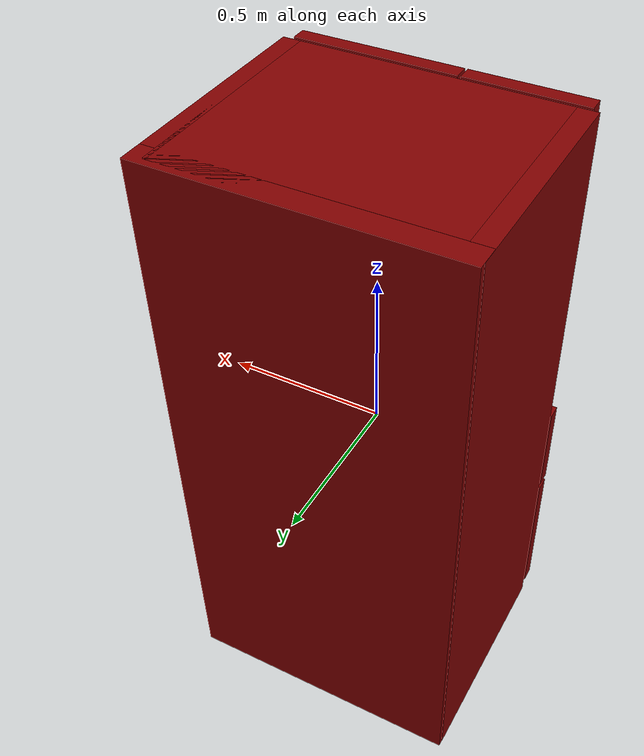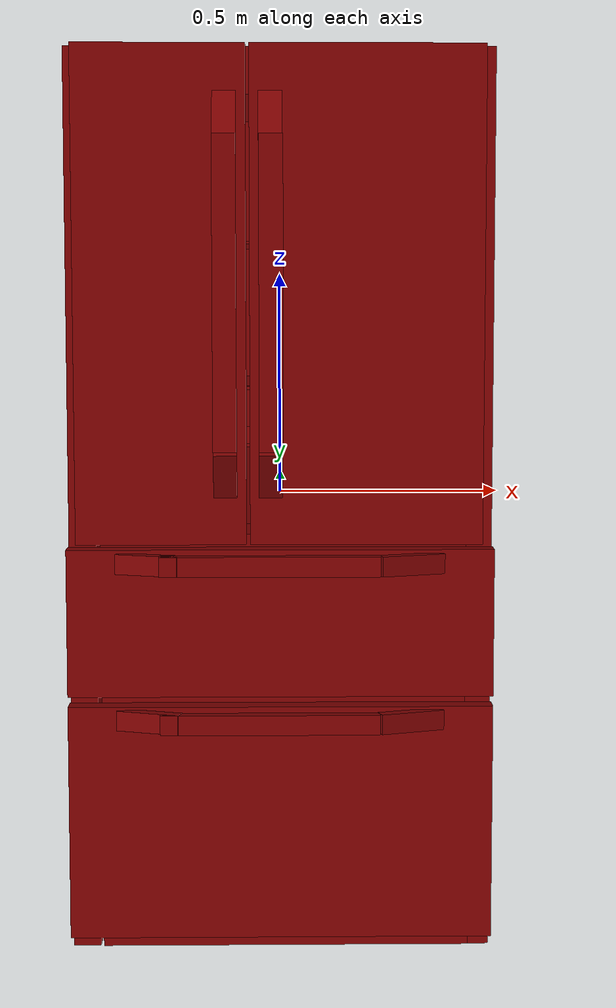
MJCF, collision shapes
<?xml version='1.0' encoding='UTF-8'?>
<mujoco model="model">
  <option timestep="0.002" gravity="0.0 0.0 -9.81"/>
  <compiler angle="radian"/>
  <asset>
    <mesh file="visuals/freezer0.obj" name="freezer0_vis"/>
    <mesh file="visuals/freezer1.obj" name="freezer1_vis"/>
    <mesh file="visuals/fridge_drawer0.obj" name="fridge_drawer0_vis"/>
    <mesh file="visuals/fridge_left_Clear.obj" name="fridge_left_Clear_vis"/>
    <mesh file="visuals/fridge_left_door.obj" name="fridge_left_door_vis"/>
    <mesh file="visuals/fridge_right_Clear.obj" name="fridge_right_Clear_vis"/>
    <mesh file="visuals/fridge_right_door.obj" name="fridge_right_door_vis"/>
    <mesh file="visuals/Body001.obj" name="Body001_vis"/>
    <mesh file="visuals/Body001_Clear.obj" name="Body001_Clear_vis"/>
    <texture file="visuals/T_BC001.png" name="Body001_material" type="2d"/>
    <material name="Body001_material" rgba="1 1 1 1.0" texture="Body001_material" shininess="0.1" specular="5"/>
    <texture file="visuals/T_BC001.png" name="freezer0_material" type="2d"/>
    <material name="freezer0_material" rgba="1 1 1 1.0" texture="freezer0_material" shininess="0.1" specular="5"/>
    <texture file="visuals/T_BC001.png" name="freezer1_material" type="2d"/>
    <material name="freezer1_material" rgba="1 1 1 1.0" texture="freezer1_material" shininess="0.1" specular="5"/>
    <texture file="visuals/T_BC001.png" name="fridge_drawer0_material" type="2d"/>
    <material name="fridge_drawer0_material" rgba="1 1 1 1.0" texture="fridge_drawer0_material" shininess="0.1" specular="5"/>
    <texture file="visuals/T_BC001.png" name="fridge_left_door_material" type="2d"/>
    <material name="fridge_left_door_material" rgba="1 1 1 1.0" texture="fridge_left_door_material" shininess="0.1" specular="5"/>
    <material name="fridge_left_Clear_material" rgba="0.7173659801483154 0.7173659801483154 0.7173659801483154 0.699999988079071" shininess="0.141421377658844" specular="0.3103448502657381"/>
    <texture file="visuals/T_BC001.png" name="fridge_right_door_material" type="2d"/>
    <material name="fridge_right_door_material" rgba="1 1 1 1.0" texture="fridge_right_door_material" shininess="0.1" specular="5"/>
    <material name="fridge_right_Clear_material" rgba="0.7173659801483154 0.7173659801483154 0.7173659801483154 0.699999988079071" shininess="0.141421377658844" specular="0.3103448502657381"/>
    <material name="Body001_Clear_material" rgba="0.7173659801483154 0.7173659801483154 0.7173659801483154 0.699999988079071" shininess="0.141421377658844" specular="0.3103448502657381"/>
  </asset>
  <default>
    <default class="visual">
      <geom conaffinity="0" contype="0" group="1" type="mesh"/>
    </default>
    <default class="collision">
      <geom group="0" rgba="0.5 0 0 0.5"/>
    </default>
    <default class="spawn">
      <geom group="0" rgba="1 1 1 0.5" contype="0" conaffinity="0"/>
      <site group="0" rgba="1 1 1 0.5"/>
    </default>
    <default class="region">
      <geom group="1" conaffinity="0" contype="0" rgba="0 1 0 0"/>
    </default>
  </default>
  <worldbody>
    <body>
      <body name="object">
        <geom mesh="Body001_vis" type="mesh" solimp="0.998 0.998 0.001" solref="0.001 1" friction="0.95 0.3 0.1" class="visual" material="Body001_material"/>
        <geom class="collision" type="box" pos="-0.42622808 0.04285824 0.00000000" size="0.029605332762002945 0.3534112274646759 0.9728236794471741" quat="1.0 0.0 0.0 0.0"/>
        <geom class="collision" type="box" pos="0.42867466 0.04123300 -0.00000000" size="0.027389300987124443 0.3517859876155853 0.9728236794471741" quat="1.0 0.0 0.0 0.0"/>
        <geom class="collision" type="box" pos="0.00137756 0.04123300 0.92308980" size="0.41047734022140503 0.3517859876155853 0.04973379895091057" quat="1.0 0.0 0.0 0.0"/>
        <geom class="collision" type="box" pos="0.01116431 0.03959446 -0.90085447" size="0.40069055557250977 0.3534245193004608 0.071969173848629" quat="1.0 0.0 0.0 0.0"/>
        <geom class="collision" type="box" pos="0.00051094 0.37794326 0.00000000" size="0.4555530548095703 0.037149157375097275 0.9728236794471741" quat="1.0 0.0 0.0 0.0"/>
        <geom class="collision" type="box" pos="0.01116431 0.04435379 -0.08724128" size="0.40069055557250977 0.34866517782211304 0.026909757405519485" quat="1.0 0.0 0.0 0.0"/>
        <geom class="collision" type="box" pos="0.01116431 0.04435379 -0.42248935" size="0.40069055557250977 0.34866517782211304 0.03191669285297394" quat="1.0 0.0 0.0 0.0"/>
        <geom class="collision" type="box" pos="0.00160570 0.09651739 0.24893118" size="0.39985665678977966 0.2622455656528473 0.0026953681372106075" quat="1.0 0.0 0.0 0.0"/>
        <geom class="collision" type="box" pos="0.00160124 0.09651739 0.56729835" size="0.40373584628105164 0.2622455656528473 0.002695267554372549" quat="1.0 0.0 0.0 0.0"/>
        <geom class="collision" type="box" pos="0.01116431 -0.16997062 0.24859875" size="0.40069055557250977 0.007287968415766954 0.003665081923827529" quat="1.0 0.0 0.0 0.0"/>
        <geom class="collision" type="box" pos="0.01116431 -0.16997062 0.56729937" size="0.40069055557250977 0.007287968415766954 0.002968861721456051" quat="1.0 0.0 0.0 0.0"/>
        <body name="freezer0">
          <geom class="region" name="reg_freezer0" type="box" pos="-0.0017283800000000016 -0.121335195 -0.64552891" size="0.33003923 0.152072235 0.14048088999999997"/>
          <joint axis="0.0 -1.0 0.0" pos="0.00011580 -0.13331749 -0.67677826" limited="true" name="freezer0_door_joint" range="0.0 0.4" type="slide" damping="1" frictionloss="1" armature=".01" stiffness="0.05"/>
          <geom mesh="freezer0_vis" type="mesh" solimp="0.998 0.998 0.001" solref="0.001 1" friction="0.95 0.3 0.1" class="visual" material="freezer0_material"/>
          <geom class="collision" type="box" pos="-0.00789430 0.09419683 -0.65920329" size="0.3464532792568207 0.012335081584751606 0.1701451539993286" quat="0.9852511882781982 -0.17111438512802124 -1.6719975429462985e-17 -2.6411181610115746e-19"/>
          <geom class="collision" type="box" pos="-0.35075328 -0.08023247 -0.65726238" size="0.014440087601542473 0.19891704618930817 0.15775400400161743" quat="1.0 0.0 0.0 0.0"/>
          <geom class="collision" type="box" pos="0.34675571 -0.08023246 -0.65738887" size="0.014201557263731956 0.19892151653766632 0.15762756764888763" quat="1.0 0.0 0.0 0.0"/>
          <geom class="collision" type="box" pos="0.00082622 -0.12263945 -0.80584735" size="0.3538326621055603 0.15651457011699677 0.01437593437731266" quat="1.0 0.0 0.0 0.0"/>
          <geom class="collision" type="box" pos="0.00011528 -0.34862573 -0.67960572" size="0.45594871044158936 0.02427990362048149 0.2544715106487274" quat="1.0 0.0 0.0 0.0" name="freezer0_door_main"/>
          <geom class="collision" type="box" pos="-0.02168056 -0.41237743 -0.45322755" size="0.2335955798625946 0.013415376655757427 0.02128618024289608" quat="1.0 0.0 0.0 0.0" name="freezer0_door_handle_main"/>
          <geom class="collision" type="box" pos="-0.27999414 -0.39033712 -0.45261282" size="0.07090720534324646 0.013639247044920921 0.02128618024289608" quat="3.0971946785030013e-07 0.9866302013397217 -0.16297516226768494 -5.1160586878040704e-08" name="freezer0_door_handle_1"/>
          <geom class="collision" type="box" pos="0.27838733 -0.39033712 -0.45261285" size="0.07090720534324646 0.013639247044920921 0.02128618024289608" quat="0.9866302013397217 0.0 0.0 0.16297516226768494" name="freezer0_door_handle_2"/>
        </body>
        <body name="freezer1">
          <geom class="region" name="reg_freezer1" type="box" pos="-0.0017283800000000016 -0.02500118500000001 -0.258839065" size="0.33003923 0.247400625 0.09415449499999999"/>
          <joint axis="0.0 -1.0 0.0" pos="0.00011578 -0.08087891 -0.24765161" limited="true" name="freezer1_door_joint" range="0.0 0.4" type="slide" damping="1" frictionloss="1" armature=".01" stiffness="0.05"/>
          <geom mesh="freezer1_vis" type="mesh" solimp="0.998 0.998 0.001" solref="0.001 1" friction="0.95 0.3 0.1" class="visual" material="freezer1_material"/>
          <geom class="collision" type="box" pos="-0.00789430 0.24395667 -0.27274412" size="0.3464532792568207 0.01158692967146635 0.11446794122457504" quat="0.9995784759521484 -0.029031701385974884 -1.2537097606891572e-17 3.4457265656116787e-19"/>
          <geom class="collision" type="box" pos="-0.35146878 -0.01221650 -0.27273270" size="0.014970029704272747 0.26539409160614014 0.11438349634408951" quat="1.0 0.0 0.0 0.0"/>
          <geom class="collision" type="box" pos="0.34642472 -0.01221650 -0.27274254" size="0.014450441114604473 0.26540884375572205 0.1138586774468422" quat="1.0 0.0 0.0 0.0"/>
          <geom class="collision" type="box" pos="0.00082622 -0.01798618 -0.37294281" size="0.3538326621055603 0.2596391439437866 0.01507387962192297" quat="1.0 0.0 0.0 0.0"/>
          <geom class="collision" type="box" pos="0.00011528 -0.34862573 -0.24399549" size="0.45594871044158936 0.02427990362048149 0.15896204113960266" quat="1.0 0.0 0.0 0.0" name="freezer1_door_main"/>
          <geom class="collision" type="box" pos="-0.02168059 -0.41237743 -0.11448485" size="0.23359550535678864 0.013415376655757427 0.02128618024289608" quat="1.0 0.0 0.0 0.0" name="freezer1_door_handle_main"/>
          <geom class="collision" type="box" pos="0.27838733 -0.39033712 -0.11448485" size="0.07090720534324646 0.013639247044920921 0.02128618024289608" quat="0.9866302013397217 0.0 0.0 0.16297516226768494" name="freezer1_door_handle_2"/>
          <geom class="collision" type="box" pos="-0.27999414 -0.39033715 -0.11448485" size="0.07090721279382706 0.013639247044920921 0.02128618024289608" quat="3.0971946785030013e-07 0.9866302013397217 -0.16297516226768494 -5.1160586878040704e-08" name="freezer1_door_handle_1"/>
        </body>
        <body name="fridge_drawer0">
          <geom class="region" name="reg_fridge_drawer0" type="box" pos="0.0019757850000000077 0.06851884000000001 0.037885635" size="0.342209335 0.20763526 0.080212655"/>
          <joint axis="0.0 -1.0 0.0" pos="0.00268758 0.05375673 0.01434943" limited="true" name="fridge_drawer0_joint" range="0.0 0.45" type="slide" damping="1" frictionloss="1" armature=".01" stiffness="0.05"/>
          <geom mesh="fridge_drawer0_vis" type="mesh" solimp="0.998 0.998 0.001" solref="0.001 1" friction="0.95 0.3 0.1" class="visual" material="fridge_drawer0_material"/>
          <geom class="collision" type="box" pos="0.00297103 0.06179669 -0.04987789" size="0.3549322187900543 0.21900534629821777 0.00650826608762145" quat="1.0 0.0 0.0 0.0"/>
          <geom class="collision" type="box" pos="0.00297102 0.30045371 0.03513788" size="0.35493215918540955 0.010893763974308968 0.09288446605205536" quat="0.9980632662773132 -0.06220714747905731 1.3812760658319826e-17 -2.86053822665894e-24"/>
          <geom class="collision" type="box" pos="0.00904244 -0.17644441 0.03600744" size="0.361003577709198 0.011427411809563637 0.09140660613775253" quat="0.990718424320221 0.13593022525310516 -3.658348534081124e-17 -1.5539371560439019e-18"/>
          <geom class="collision" type="box" pos="0.36125731 0.06853633 0.03469197" size="0.00970794353634119 0.23029488325119019 0.09105224907398224" quat="1.0 0.0 0.0 0.0"/>
          <geom class="collision" type="box" pos="-0.35554860 0.06478623 0.03417211" size="0.01100264210253954 0.23404495418071747 0.09176009148359299" quat="1.0 0.0 0.0 0.0"/>
        </body>
        <body name="fridge_left_door">
          <joint axis="0.0 0.0 -1.0" pos="-0.43033550 -0.35035236 0.44032699" limited="true" name="fridge_left_door_joint" range="0.0 1.5707963267948966" type="hinge" damping="1" frictionloss="1" armature=".01" stiffness="0.05"/>
          <geom mesh="fridge_left_door_vis" type="mesh" solimp="0.998 0.998 0.001" solref="0.001 1" friction="0.95 0.3 0.1" class="visual" material="fridge_left_door_material"/>
          <geom class="collision" type="box" pos="-0.25371227 -0.34789954 0.44926906" size="0.18143905699253082 0.023472217842936516 0.5234464406967163" quat="1.0 0.0 0.0 0.0" name="fridge_left_door_main"/>
          <geom class="collision" type="box" pos="-0.11612616 -0.41859980 0.45554173" size="0.02461545541882515 0.01387966051697731 0.3281340003013611" quat="1.0 0.0 0.0 0.0" name="fridge_left_door_handle_main"/>
          <geom class="collision" type="box" pos="-0.11612618 -0.38840263 0.82348615" size="0.02462036907672882 0.01352567970752716 0.049802325665950775" quat="0.9809927344322205 -0.19404448568820953 4.308653777996428e-17 -5.087527271977686e-24" name="fridge_left_door_handle_1"/>
          <geom class="collision" type="box" pos="-0.11612616 -0.39106475 0.07842322" size="0.024620363488793373 0.013525689952075481 0.04980230703949928" quat="3.0794979011261603e-07 -6.091376292260975e-08 -0.19404451549053192 0.9809927344322205" name="fridge_left_door_handle_2"/>
          <body name="fridge_left_Clear">
            <geom mesh="fridge_left_Clear_vis" type="mesh" solimp="0.998 0.998 0.001" solref="0.001 1" friction="0.95 0.3 0.1" class="visual" material="fridge_left_Clear_material"/>
            <geom class="collision" type="box" pos="-0.26133928 -0.28615175 0.64779675" size="0.11234426498413086 0.0492464080452919 0.003341684117913246" quat="1.0 0.0 0.0 0.0"/>
            <geom class="collision" type="box" pos="-0.15971474 -0.28038208 0.67442155" size="0.006390671711415052 0.05501607805490494 0.024759508669376373" quat="1.0 0.0 0.0 0.0"/>
            <geom class="collision" type="box" pos="-0.36694572 -0.28038208 0.67442155" size="0.004815603140741587 0.05501104146242142 0.024759508669376373" quat="1.0 0.0 0.0 0.0"/>
            <geom class="collision" type="box" pos="-0.27005980 -0.22746070 0.67442155" size="0.10496816039085388 0.00403837114572525 0.024759508669376373" quat="1.0 0.0 0.0 0.0"/>
            <geom class="collision" type="box" pos="-0.27005980 -0.22746070 0.49715516" size="0.10496816039085388 0.00403837114572525 0.024759508669376373" quat="1.0 0.0 0.0 0.0"/>
            <geom class="collision" type="box" pos="-0.36694572 -0.28038208 0.49715516" size="0.004815603140741587 0.05501147359609604 0.024759508669376373" quat="1.0 0.0 0.0 0.0"/>
            <geom class="collision" type="box" pos="-0.15971474 -0.28038208 0.49715516" size="0.006390688940882683 0.05501607805490494 0.024759508669376373" quat="1.0 0.0 0.0 0.0"/>
            <geom class="collision" type="box" pos="-0.26133928 -0.28615175 0.47053036" size="0.11234426498413086 0.0492464080452919 0.003341684117913246" quat="1.0 0.0 0.0 0.0"/>
            <geom class="collision" type="box" pos="-0.26133928 -0.28615175 0.15273464" size="0.11234426498413086 0.0492464080452919 0.0033416731748729944" quat="1.0 0.0 0.0 0.0"/>
            <geom class="collision" type="box" pos="-0.15971474 -0.28038208 0.20339920" size="0.006390688940882683 0.05501607805490494 0.048799291253089905" quat="1.0 0.0 0.0 0.0"/>
            <geom class="collision" type="box" pos="-0.36694572 -0.28038208 0.20339920" size="0.004815603140741587 0.05501220375299454 0.048799291253089905" quat="1.0 0.0 0.0 0.0"/>
            <geom class="collision" type="box" pos="-0.27005980 -0.22746070 0.20339920" size="0.10496823489665985 0.00403837114572525 0.048799291253089905" quat="1.0 0.0 0.0 0.0"/>
          </body>
        </body>
        <body name="fridge_right_door">
          <joint axis="0.0 0.0 1.0" pos="0.42562472 -0.34662078 0.44032699" limited="true" name="fridge_right_door_joint" range="0.0 1.5707963267948966" type="hinge" damping="1" frictionloss="1" armature=".01" stiffness="0.05"/>
          <geom mesh="fridge_right_door_vis" type="mesh" solimp="0.998 0.998 0.001" solref="0.001 1" friction="0.95 0.3 0.1" class="visual" material="fridge_right_door_material"/>
          <geom class="collision" type="box" pos="-0.01877056 -0.41958176 0.45554170" size="0.02517479471862316 0.014861676841974258 0.32813549041748047" quat="1.0 0.0 0.0 0.0" name="fridge_right_door_handle_main"/>
          <geom class="collision" type="box" pos="0.18320087 -0.34789981 0.44926855" size="0.24732272326946259 0.02347227744758129 0.5234549641609192" quat="1.0 0.0 0.0 0.0" name="fridge_right_door_main"/>
          <geom class="collision" type="box" pos="-0.02041620 -0.39106475 0.07842321" size="0.024620365351438522 0.013525689952075481 0.049802325665950775" quat="3.0794979011261603e-07 -6.091376292260975e-08 -0.19404451549053192 0.9809927344322205" name="fridge_right_door_handle_2"/>
          <geom class="collision" type="box" pos="-0.02041621 -0.38840263 0.82348615" size="0.024620365351438522 0.01352567970752716 0.049802325665950775" quat="0.9809927344322205 -0.19404448568820953 4.308653777996428e-17 -5.087527271977686e-24" name="fridge_right_door_handle_1"/>
          <body name="fridge_right_Clear">
            <geom mesh="fridge_right_Clear_vis" type="mesh" solimp="0.998 0.998 0.001" solref="0.001 1" friction="0.95 0.3 0.1" class="visual" material="fridge_right_Clear_material"/>
            <geom class="collision" type="box" pos="0.18978491 -0.28615175 0.47053036" size="0.17621146142482758 0.0492464080452919 0.003341684117913246" quat="1.0 0.0 0.0 0.0"/>
            <geom class="collision" type="box" pos="0.35527664 -0.28038208 0.49715516" size="0.006390671711415052 0.05501607805490494 0.024759508669376373" quat="1.0 0.0 0.0 0.0"/>
            <geom class="collision" type="box" pos="0.02031130 -0.28038208 0.49715516" size="0.004815617576241493 0.0550127774477005 0.024759508669376373" quat="1.0 0.0 0.0 0.0"/>
            <geom class="collision" type="box" pos="0.18106441 -0.22746070 0.49715516" size="0.1688341498374939 0.00403837114572525 0.024759508669376373" quat="1.0 0.0 0.0 0.0"/>
            <geom class="collision" type="box" pos="0.18106442 -0.22746070 0.67442155" size="0.1688341647386551 0.00403837114572525 0.024759508669376373" quat="1.0 0.0 0.0 0.0"/>
            <geom class="collision" type="box" pos="0.02031130 -0.28038208 0.67442155" size="0.004815617576241493 0.05501320958137512 0.024759508669376373" quat="1.0 0.0 0.0 0.0"/>
            <geom class="collision" type="box" pos="0.35527664 -0.28038208 0.67442155" size="0.006390671711415052 0.05501607805490494 0.024759508669376373" quat="1.0 0.0 0.0 0.0"/>
            <geom class="collision" type="box" pos="0.18106441 -0.22746070 0.20339920" size="0.16883422434329987 0.00403837114572525 0.048799291253089905" quat="1.0 0.0 0.0 0.0"/>
            <geom class="collision" type="box" pos="0.02031130 -0.28038208 0.20339920" size="0.004815618973225355 0.05501365661621094 0.048799291253089905" quat="1.0 0.0 0.0 0.0"/>
            <geom class="collision" type="box" pos="0.35527664 -0.28038208 0.20339920" size="0.006390705704689026 0.05501607805490494 0.048799291253089905" quat="1.0 0.0 0.0 0.0"/>
            <geom class="collision" type="box" pos="0.18978491 -0.28615175 0.64779675" size="0.17621146142482758 0.0492464080452919 0.003341684117913246" quat="1.0 0.0 0.0 0.0"/>
            <geom class="collision" type="box" pos="0.18978491 -0.28615175 0.15560634" size="0.17621146142482758 0.0492464080452919 0.0033416731748729944" quat="1.0 0.0 0.0 0.0"/>
          </body>
        </body>
        <body name="Body001_Clear">
          <geom mesh="Body001_Clear_vis" type="mesh" solimp="0.998 0.998 0.001" solref="0.001 1" friction="0.95 0.3 0.1" class="visual" material="Body001_Clear_material"/>
          <geom class="collision" type="box" pos="0.00160570 0.09651739 0.24893118" size="0.39985665678977966 0.2622455656528473 0.0026953681372106075" quat="1.0 0.0 0.0 0.0"/>
          <geom class="collision" type="box" pos="0.00160124 0.09651739 0.56729835" size="0.40373584628105164 0.2622455656528473 0.002695267554372549" quat="1.0 0.0 0.0 0.0"/>
        </body>
        <geom class="region" name="reg_fridge_shelf0" type="box" pos="0.0021706300000000067 0.090877035 0.40788764" size="0.38276595 0.262593825 0.15161283"/>
        <geom class="region" name="reg_fridge_shelf1" type="box" pos="0.0029816700000000196 0.090877035 0.721767575" size="0.39400747 0.262593825 0.14676873499999998"/>
        <geom class="region" name="reg_main" type="box" pos="0.00011527000000000065 0.029420780000000007 -2.9999999984209325e-08" size="0.45694871 0.40464047999999997 0.9738236800000001"/>
      </body>
    </body>
  </worldbody>
  <actuator>
    <motor name="freezer0_door_joint_actuator" joint="freezer0_door_joint" gear="50"/>
    <motor name="freezer1_door_joint_actuator" joint="freezer1_door_joint" gear="50"/>
    <motor name="fridge_drawer0_joint_actuator" joint="fridge_drawer0_joint" gear="50"/>
    <motor name="fridge_left_door_joint_actuator" joint="fridge_left_door_joint" gear="50"/>
    <motor name="fridge_right_door_joint_actuator" joint="fridge_right_door_joint" gear="50"/>
  </actuator>
</mujoco>
